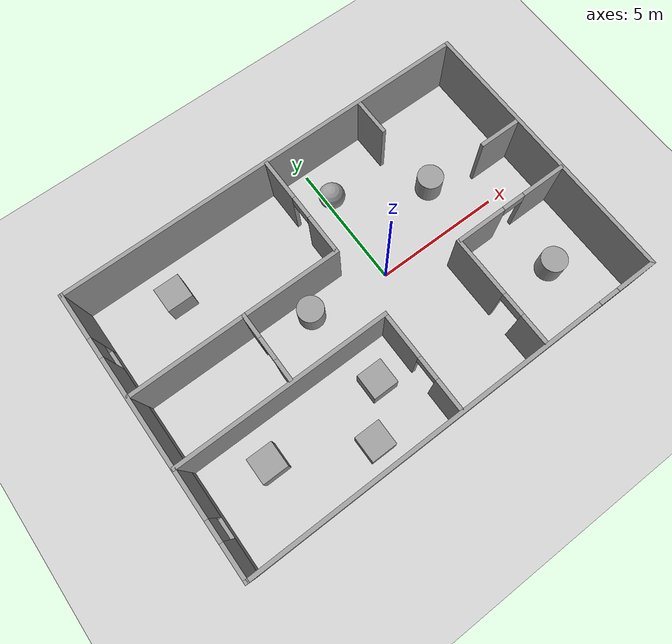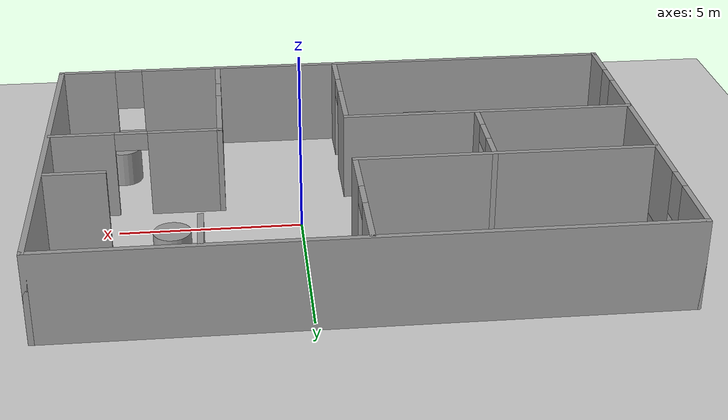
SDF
<sdf version="1.6">
 <world name="default">
  <light name="sun" type="directional">
   <pose>0 0 10 0 -0 0</pose>
   <diffuse>0.8 0.8 0.8 1</diffuse>
   <specular>0.2 0.2 0.2 1</specular>
   <attenuation>
    <range>1000</range>
    <constant>0.9</constant>
    <linear>0.01</linear>
    <quadratic>0.001</quadratic>
   </attenuation>
   <direction>-0.5 0.1 -0.9</direction>
  </light>
  <model name="ground_plane">
   <static>1</static>
   <link name="link">
    <collision name="collision">
     <geometry><plane><normal>0 0 1</normal><size>100 100</size></plane></geometry>
     <surface><friction><ode><mu>100</mu><mu2>50</mu2></ode></friction></surface>
    </collision>
    <visual name="visual">
     <cast_shadows>0</cast_shadows>
     <geometry><plane><normal>0 0 1</normal><size>100 100</size></plane></geometry>
     <material>
      <script><uri>file://media/materials/scripts/gazebo.material</uri><name>Gazebo/Grey</name></script>
     </material>
    </visual>
   </link>
  </model>
  <gravity>0 0 -9.8</gravity>
  <magnetic_field>6e-06 2.3e-05 -4.2e-05</magnetic_field>
  <atmosphere type="adiabatic"/>
  <physics name="default_physics" default="0" type="ode">
   <max_step_size>0.001</max_step_size>
   <real_time_factor>1</real_time_factor>
   <real_time_update_rate>1000</real_time_update_rate>
  </physics>
  <scene><ambient>0.4 0.4 0.4 1</ambient><background>0.7 0.7 0.7 1</background><shadows>1</shadows></scene>
  <spherical_coordinates>
   <surface_model>EARTH_WGS84</surface_model>
   <latitude_deg>0</latitude_deg>
   <longitude_deg>0</longitude_deg>
   <elevation>0</elevation>
   <heading_deg>0</heading_deg>
  </spherical_coordinates>
  <audio><device>default</device></audio>
  <model name="simple_room">
   <pose>-1.34942 -0.18706 0 0 -0 0</pose>
   <link name="Wall_0">
    <collision name="Wall_0_Collision">
     <geometry><box><size>16.5 0.15 2.5</size></box></geometry>
     <pose>0 0 1.25 0 -0 0</pose>
    </collision>
    <visual name="Wall_0_Visual">
     <pose>0 0 1.25 0 -0 0</pose>
     <geometry><box><size>16.5 0.15 2.5</size></box></geometry>
     <material>
      <script><uri>file://media/materials/scripts/gazebo.material</uri><name>Gazebo/Grey</name></script>
      <ambient>1 1 1 1</ambient>
     </material>
     <meta><layer>0</layer></meta>
    </visual>
    <pose>-0 5.425 0 0 -0 0</pose>
   </link>
   <link name="Wall_10">
    <collision name="Wall_10_Collision">
     <geometry><box><size>8.25 0.15 2.5</size></box></geometry>
     <pose>0 0 1.25 0 -0 0</pose>
    </collision>
    <visual name="Wall_10_Visual">
     <pose>0 0 1.25 0 -0 0</pose>
     <geometry><box><size>8.25 0.15 2.5</size></box></geometry>
     <material>
      <script><uri>file://media/materials/scripts/gazebo.material</uri><name>Gazebo/Grey</name></script>
      <ambient>1 1 1 1</ambient>
     </material>
     <meta><layer>0</layer></meta>
    </visual>
    <pose>-4.09626 -1.47004 0 0 -0 0</pose>
   </link>
   <link name="Wall_11">
    <pose>-0.046255 -3.39504 0 0 -0 -1.5708</pose>
    <visual name="Wall_11_Visual_0">
     <pose>-1.07029 0 1.25 0 -0 0</pose>
     <geometry><box><size>1.85942 0.15 2.5</size></box></geometry>
     <material>
      <script><uri>file://media/materials/scripts/gazebo.material</uri><name>Gazebo/Grey</name></script>
      <ambient>1 1 1 1</ambient>
     </material>
     <meta><layer>0</layer></meta>
    </visual>
    <collision name="Wall_11_Collision_0">
     <geometry><box><size>1.85942 0.15 2.5</size></box></geometry>
     <pose>-1.07029 0 1.25 0 -0 0</pose>
    </collision>
    <visual name="Wall_11_Visual_1">
     <pose>1.37971 0 1.25 0 -0 0</pose>
     <geometry><box><size>1.24058 0.15 2.5</size></box></geometry>
     <material>
      <script><uri>file://media/materials/scripts/gazebo.material</uri><name>Gazebo/Grey</name></script>
      <ambient>1 1 1 1</ambient>
     </material>
     <meta><layer>0</layer></meta>
    </visual>
    <collision name="Wall_11_Collision_1">
     <geometry><box><size>1.24058 0.15 2.5</size></box></geometry>
     <pose>1.37971 0 1.25 0 -0 0</pose>
    </collision>
    <visual name="Wall_11_Visual_2">
     <pose>0.309417 0 2.25 0 -0 0</pose>
     <geometry><box><size>0.9 0.15 0.5</size></box></geometry>
     <material>
      <script><uri>file://media/materials/scripts/gazebo.material</uri><name>Gazebo/Grey</name></script>
      <ambient>1 1 1 1</ambient>
     </material>
     <meta><layer>0</layer></meta>
    </visual>
    <collision name="Wall_11_Collision_2">
     <geometry><box><size>0.9 0.15 0.5</size></box></geometry>
     <pose>0.309417 0 2.25 0 -0 0</pose>
    </collision>
   </link>
   <link name="Wall_13">
    <pose>3.50463 -3.12547 0 0 -0 1.5708</pose>
    <visual name="Wall_13_Visual_0">
     <pose>-1.65279 0 1.25 0 -0 0</pose>
     <geometry><box><size>1.19441 0.15 2.5</size></box></geometry>
     <material>
      <script><uri>file://media/materials/scripts/gazebo.material</uri><name>Gazebo/Grey</name></script>
      <ambient>1 1 1 1</ambient>
     </material>
     <meta><layer>0</layer></meta>
    </visual>
    <collision name="Wall_13_Collision_0">
     <geometry><box><size>1.19441 0.15 2.5</size></box></geometry>
     <pose>-1.65279 0 1.25 0 -0 0</pose>
    </collision>
    <visual name="Wall_13_Visual_1">
     <pose>1.04721 0 1.25 0 -0 0</pose>
     <geometry><box><size>2.40559 0.15 2.5</size></box></geometry>
     <material>
      <script><uri>file://media/materials/scripts/gazebo.material</uri><name>Gazebo/Grey</name></script>
      <ambient>1 1 1 1</ambient>
     </material>
     <meta><layer>0</layer></meta>
    </visual>
    <collision name="Wall_13_Collision_1">
     <geometry><box><size>2.40559 0.15 2.5</size></box></geometry>
     <pose>1.04721 0 1.25 0 -0 0</pose>
    </collision>
    <visual name="Wall_13_Visual_2">
     <pose>-0.605588 0 2.25 0 -0 0</pose>
     <geometry><box><size>0.9 0.15 0.5</size></box></geometry>
     <material>
      <script><uri>file://media/materials/scripts/gazebo.material</uri><name>Gazebo/Grey</name></script>
      <ambient>1 1 1 1</ambient>
     </material>
     <meta><layer>0</layer></meta>
    </visual>
    <collision name="Wall_13_Collision_2">
     <geometry><box><size>0.9 0.15 0.5</size></box></geometry>
     <pose>-0.605588 0 2.25 0 -0 0</pose>
    </collision>
   </link>
   <link name="Wall_14">
    <pose>5.80463 -0.950467 0 0 -0 0</pose>
    <visual name="Wall_14_Visual_0">
     <pose>-1.35219 0 1.25 0 -0 0</pose>
     <geometry><box><size>2.04562 0.15 2.5</size></box></geometry>
     <material>
      <script><uri>file://media/materials/scripts/gazebo.material</uri><name>Gazebo/Grey</name></script>
      <ambient>1 1 1 1</ambient>
     </material>
     <meta><layer>0</layer></meta>
    </visual>
    <collision name="Wall_14_Collision_0">
     <geometry><box><size>2.04562 0.15 2.5</size></box></geometry>
     <pose>-1.35219 0 1.25 0 -0 0</pose>
    </collision>
    <visual name="Wall_14_Visual_1">
     <pose>1.47281 0 1.25 0 -0 0</pose>
     <geometry><box><size>1.80438 0.15 2.5</size></box></geometry>
     <material>
      <script><uri>file://media/materials/scripts/gazebo.material</uri><name>Gazebo/Grey</name></script>
      <ambient>1 1 1 1</ambient>
     </material>
     <meta><layer>0</layer></meta>
    </visual>
    <collision name="Wall_14_Collision_1">
     <geometry><box><size>1.80438 0.15 2.5</size></box></geometry>
     <pose>1.47281 0 1.25 0 -0 0</pose>
    </collision>
    <visual name="Wall_14_Visual_2">
     <pose>0.120618 0 2.25 0 -0 0</pose>
     <geometry><box><size>0.9 0.15 0.5</size></box></geometry>
     <material>
      <script><uri>file://media/materials/scripts/gazebo.material</uri><name>Gazebo/Grey</name></script>
      <ambient>1 1 1 1</ambient>
     </material>
     <meta><layer>0</layer></meta>
    </visual>
    <collision name="Wall_14_Collision_2">
     <geometry><box><size>0.9 0.15 0.5</size></box></geometry>
     <pose>0.120618 0 2.25 0 -0 0</pose>
    </collision>
   </link>
   <link name="Wall_16">
    <collision name="Wall_16_Collision">
     <geometry><box><size>1.5 0.15 2.5</size></box></geometry>
     <pose>0 0 1.25 0 -0 0</pose>
    </collision>
    <visual name="Wall_16_Visual">
     <pose>0 0 1.25 0 -0 0</pose>
     <geometry><box><size>1.5 0.15 2.5</size></box></geometry>
     <material>
      <script><uri>file://media/materials/scripts/gazebo.material</uri><name>Gazebo/Grey</name></script>
      <ambient>1 1 1 1</ambient>
     </material>
     <meta><layer>0</layer></meta>
    </visual>
    <pose>4.03664 4.63801 0 0 -0 -1.5708</pose>
   </link>
   <link name="Wall_18">
    <collision name="Wall_18_Collision">
     <geometry><box><size>1.75 0.15 2.5</size></box></geometry>
     <pose>0 0 1.25 0 -0 0</pose>
    </collision>
    <visual name="Wall_18_Visual">
     <pose>0 0 1.25 0 -0 0</pose>
     <geometry><box><size>1.75 0.15 2.5</size></box></geometry>
     <material>
      <script><uri>file://media/materials/scripts/gazebo.material</uri><name>Gazebo/Grey</name></script>
      <ambient>1 1 1 1</ambient>
     </material>
     <meta><layer>0</layer></meta>
    </visual>
    <pose>7.33307 1.37618 0 0 -0 3.14159</pose>
   </link>
   <link name="Wall_2">
    <pose>-8.175 0 0 0 -0 -1.5708</pose>
    <visual name="Wall_2_Visual_0">
     <pose>-4.5558 0 1.25 0 -0 0</pose>
     <geometry><box><size>1.8884 0.15 2.5</size></box></geometry>
     <material>
      <script><uri>file://media/materials/scripts/gazebo.material</uri><name>Gazebo/Grey</name></script>
      <ambient>1 1 1 1</ambient>
     </material>
     <meta><layer>0</layer></meta>
    </visual>
    <collision name="Wall_2_Collision_0">
     <geometry><box><size>1.8884 0.15 2.5</size></box></geometry>
     <pose>-4.5558 0 1.25 0 -0 0</pose>
    </collision>
    <visual name="Wall_2_Visual_1">
     <pose>0.944202 0 0.25 0 -0 0</pose>
     <geometry><box><size>9.1116 0.15 0.5</size></box></geometry>
     <material>
      <script><uri>file://media/materials/scripts/gazebo.material</uri><name>Gazebo/Grey</name></script>
      <ambient>1 1 1 1</ambient>
     </material>
     <meta><layer>0</layer></meta>
    </visual>
    <collision name="Wall_2_Collision_1">
     <geometry><box><size>9.1116 0.15 0.5</size></box></geometry>
     <pose>0.944202 0 0.25 0 -0 0</pose>
    </collision>
    <visual name="Wall_2_Visual_2">
     <pose>0.24643 0 1.5 0 -0 0</pose>
     <geometry><box><size>6.11605 0.15 2</size></box></geometry>
     <material>
      <script><uri>file://media/materials/scripts/gazebo.material</uri><name>Gazebo/Grey</name></script>
      <ambient>1 1 1 1</ambient>
     </material>
     <meta><layer>0</layer></meta>
    </visual>
    <collision name="Wall_2_Collision_2">
     <geometry><box><size>6.11605 0.15 2</size></box></geometry>
     <pose>0.24643 0 1.5 0 -0 0</pose>
    </collision>
    <visual name="Wall_2_Visual_3">
     <pose>4.80223 0 1.5 0 -0 0</pose>
     <geometry><box><size>1.39555 0.15 2</size></box></geometry>
     <material>
      <script><uri>file://media/materials/scripts/gazebo.material</uri><name>Gazebo/Grey</name></script>
      <ambient>1 1 1 1</ambient>
     </material>
     <meta><layer>0</layer></meta>
    </visual>
    <collision name="Wall_2_Collision_3">
     <geometry><box><size>1.39555 0.15 2</size></box></geometry>
     <pose>4.80223 0 1.5 0 -0 0</pose>
    </collision>
    <visual name="Wall_2_Visual_4">
     <pose>-3.2116 0 1.9 0 -0 0</pose>
     <geometry><box><size>0.8 0.15 1.2</size></box></geometry>
     <material>
      <script><uri>file://media/materials/scripts/gazebo.material</uri><name>Gazebo/Grey</name></script>
      <ambient>1 1 1 1</ambient>
     </material>
     <meta><layer>0</layer></meta>
    </visual>
    <collision name="Wall_2_Collision_4">
     <geometry><box><size>0.8 0.15 1.2</size></box></geometry>
     <pose>-3.2116 0 1.9 0 -0 0</pose>
    </collision>
    <visual name="Wall_2_Visual_5">
     <pose>3.70445 0 1.9 0 -0 0</pose>
     <geometry><box><size>0.8 0.15 1.2</size></box></geometry>
     <material>
      <script><uri>file://media/materials/scripts/gazebo.material</uri><name>Gazebo/Grey</name></script>
      <ambient>1 1 1 1</ambient>
     </material>
     <meta><layer>0</layer></meta>
    </visual>
    <collision name="Wall_2_Collision_5">
     <geometry><box><size>0.8 0.15 1.2</size></box></geometry>
     <pose>3.70445 0 1.9 0 -0 0</pose>
    </collision>
   </link>
   <link name="Wall_20">
    <pose>-3.75722 -0.056818 0 0 -0 -1.5708</pose>
    <visual name="Wall_20_Visual_0">
     <pose>-0.884195 0 1.25 0 -0 0</pose>
     <geometry><box><size>0.98161 0.15 2.5</size></box></geometry>
     <material>
      <script><uri>file://media/materials/scripts/gazebo.material</uri><name>Gazebo/Grey</name></script>
      <ambient>1 1 1 1</ambient>
     </material>
     <meta><layer>0</layer></meta>
    </visual>
    <collision name="Wall_20_Collision_0">
     <geometry><box><size>0.98161 0.15 2.5</size></box></geometry>
     <pose>-0.884195 0 1.25 0 -0 0</pose>
    </collision>
    <visual name="Wall_20_Visual_1">
     <pose>0.940805 0 1.25 0 -0 0</pose>
     <geometry><box><size>0.86839 0.15 2.5</size></box></geometry>
     <material>
      <script><uri>file://media/materials/scripts/gazebo.material</uri><name>Gazebo/Grey</name></script>
      <ambient>1 1 1 1</ambient>
     </material>
     <meta><layer>0</layer></meta>
    </visual>
    <collision name="Wall_20_Collision_1">
     <geometry><box><size>0.86839 0.15 2.5</size></box></geometry>
     <pose>0.940805 0 1.25 0 -0 0</pose>
    </collision>
    <visual name="Wall_20_Visual_2">
     <pose>0.05661 0 2.25 0 -0 0</pose>
     <geometry><box><size>0.9 0.15 0.5</size></box></geometry>
     <material>
      <script><uri>file://media/materials/scripts/gazebo.material</uri><name>Gazebo/Grey</name></script>
      <ambient>1 1 1 1</ambient>
     </material>
     <meta><layer>0</layer></meta>
    </visual>
    <collision name="Wall_20_Collision_2">
     <geometry><box><size>0.9 0.15 0.5</size></box></geometry>
     <pose>0.05661 0 2.25 0 -0 0</pose>
    </collision>
   </link>
   <link name="Wall_3">
    <pose>-0 -5.425 0 0 -0 0</pose>
    <visual name="Wall_3_Visual_0">
     <pose>-1.22937 0 1.25 0 -0 0</pose>
     <geometry><box><size>14.0413 0.15 2.5</size></box></geometry>
     <material>
      <script><uri>file://media/materials/scripts/gazebo.material</uri><name>Gazebo/Grey</name></script>
      <ambient>1 1 1 1</ambient>
     </material>
     <meta><layer>0</layer></meta>
    </visual>
    <collision name="Wall_3_Collision_0">
     <geometry><box><size>14.0413 0.15 2.5</size></box></geometry>
     <pose>-1.22937 0 1.25 0 -0 0</pose>
    </collision>
    <visual name="Wall_3_Visual_1">
     <pose>7.02063 0 0.25 0 -0 0</pose>
     <geometry><box><size>2.45875 0.15 0.5</size></box></geometry>
     <material>
      <script><uri>file://media/materials/scripts/gazebo.material</uri><name>Gazebo/Grey</name></script>
      <ambient>1 1 1 1</ambient>
     </material>
     <meta><layer>0</layer></meta>
    </visual>
    <collision name="Wall_3_Collision_1">
     <geometry><box><size>2.45875 0.15 0.5</size></box></geometry>
     <pose>7.02063 0 0.25 0 -0 0</pose>
    </collision>
    <visual name="Wall_3_Visual_2">
     <pose>7.42063 0 1.5 0 -0 0</pose>
     <geometry><box><size>1.65875 0.15 2</size></box></geometry>
     <material>
      <script><uri>file://media/materials/scripts/gazebo.material</uri><name>Gazebo/Grey</name></script>
      <ambient>1 1 1 1</ambient>
     </material>
     <meta><layer>0</layer></meta>
    </visual>
    <collision name="Wall_3_Collision_2">
     <geometry><box><size>1.65875 0.15 2</size></box></geometry>
     <pose>7.42063 0 1.5 0 -0 0</pose>
    </collision>
    <visual name="Wall_3_Visual_3">
     <pose>6.19125 0 1.9 0 -0 0</pose>
     <geometry><box><size>0.8 0.15 1.2</size></box></geometry>
     <material>
      <script><uri>file://media/materials/scripts/gazebo.material</uri><name>Gazebo/Grey</name></script>
      <ambient>1 1 1 1</ambient>
     </material>
     <meta><layer>0</layer></meta>
    </visual>
    <collision name="Wall_3_Collision_3">
     <geometry><box><size>0.8 0.15 1.2</size></box></geometry>
     <pose>6.19125 0 1.9 0 -0 0</pose>
    </collision>
   </link>
   <link name="Wall_4">
    <collision name="Wall_4_Collision">
     <geometry><box><size>11 0.15 2.5</size></box></geometry>
     <pose>0 0 1.25 0 -0 0</pose>
    </collision>
    <visual name="Wall_4_Visual">
     <pose>0 0 1.25 0 -0 0</pose>
     <geometry><box><size>11 0.15 2.5</size></box></geometry>
     <material>
      <script><uri>file://media/materials/scripts/gazebo.material</uri><name>Gazebo/Grey</name></script>
      <ambient>1 1 1 1</ambient>
     </material>
     <meta><layer>0</layer></meta>
    </visual>
    <pose>8.175 0 0 0 -0 1.5708</pose>
   </link>
   <link name="Wall_6">
    <collision name="Wall_6_Collision">
     <geometry><box><size>8.25 0.15 2.5</size></box></geometry>
     <pose>0 0 1.25 0 -0 0</pose>
    </collision>
    <visual name="Wall_6_Visual">
     <pose>0 0 1.25 0 -0 0</pose>
     <geometry><box><size>8.25 0.15 2.5</size></box></geometry>
     <material>
      <script><uri>file://media/materials/scripts/gazebo.material</uri><name>Gazebo/Grey</name></script>
      <ambient>1 1 1 1</ambient>
     </material>
     <meta><layer>0</layer></meta>
    </visual>
    <pose>-4.06965 1.24318 0 0 -0 0</pose>
   </link>
   <link name="Wall_8">
    <pose>-0.019655 3.29318 0 0 -0 1.5708</pose>
    <visual name="Wall_8_Visual_0">
     <pose>-1.30169 0 1.25 0 -0 0</pose>
     <geometry><box><size>1.64661 0.15 2.5</size></box></geometry>
     <material>
      <script><uri>file://media/materials/scripts/gazebo.material</uri><name>Gazebo/Grey</name></script>
      <ambient>1 1 1 1</ambient>
     </material>
     <meta><layer>0</layer></meta>
    </visual>
    <collision name="Wall_8_Collision_0">
     <geometry><box><size>1.64661 0.15 2.5</size></box></geometry>
     <pose>-1.30169 0 1.25 0 -0 0</pose>
    </collision>
    <visual name="Wall_8_Visual_1">
     <pose>1.27331 0 1.25 0 -0 0</pose>
     <geometry><box><size>1.70338 0.15 2.5</size></box></geometry>
     <material>
      <script><uri>file://media/materials/scripts/gazebo.material</uri><name>Gazebo/Grey</name></script>
      <ambient>1 1 1 1</ambient>
     </material>
     <meta><layer>0</layer></meta>
    </visual>
    <collision name="Wall_8_Collision_1">
     <geometry><box><size>1.70338 0.15 2.5</size></box></geometry>
     <pose>1.27331 0 1.25 0 -0 0</pose>
    </collision>
    <visual name="Wall_8_Visual_2">
     <pose>-0.028385 0 2.25 0 -0 0</pose>
     <geometry><box><size>0.9 0.15 0.5</size></box></geometry>
     <material>
      <script><uri>file://media/materials/scripts/gazebo.material</uri><name>Gazebo/Grey</name></script>
      <ambient>1 1 1 1</ambient>
     </material>
     <meta><layer>0</layer></meta>
    </visual>
    <collision name="Wall_8_Collision_2">
     <geometry><box><size>0.9 0.15 0.5</size></box></geometry>
     <pose>-0.028385 0 2.25 0 -0 0</pose>
    </collision>
   </link>
   <static>1</static>
  </model>
  <model name="unit_box">
   <pose>-6.59345 3.74283 0.499995 0 1e-05 0</pose>
   <link name="link">
    <inertial>
     <mass>1</mass>
     <inertia>
      <ixx>0.166667</ixx>
      <ixy>0</ixy>
      <ixz>0</ixz>
      <iyy>0.166667</iyy>
      <iyz>0</iyz>
      <izz>0.166667</izz>
     </inertia>
    </inertial>
    <collision name="collision"><geometry><box><size>1 1 1</size></box></geometry></collision>
    <visual name="visual">
     <geometry><box><size>1 1 1</size></box></geometry>
     <material>
      <script><name>Gazebo/Grey</name><uri>file://media/materials/scripts/gazebo.material</uri></script>
     </material>
    </visual>
   </link>
  </model>
  <model name="unit_cylinder">
   <pose>3.48907 1.83018 0.499998 3e-06 -4e-06 0</pose>
   <link name="link">
    <inertial>
     <mass>1</mass>
     <inertia><ixx>0.145833</ixx><ixy>0</ixy><ixz>0</ixz><iyy>0.145833</iyy><iyz>0</iyz><izz>0.125</izz></inertia>
    </inertial>
    <collision name="collision">
     <geometry><cylinder><radius>0.5</radius><length>1</length></cylinder></geometry>
    </collision>
    <visual name="visual">
     <geometry><cylinder><radius>0.5</radius><length>1</length></cylinder></geometry>
     <material>
      <script><name>Gazebo/Grey</name><uri>file://media/materials/scripts/gazebo.material</uri></script>
     </material>
    </visual>
   </link>
  </model>
  <model name="unit_sphere">
   <pose>0.223022 3.61332 0.5 0 -0 0</pose>
   <link name="link">
    <inertial>
     <mass>1</mass>
     <inertia><ixx>0.1</ixx><ixy>0</ixy><ixz>0</ixz><iyy>0.1</iyy><iyz>0</iyz><izz>0.1</izz></inertia>
    </inertial>
    <collision name="collision"><geometry><sphere><radius>0.5</radius></sphere></geometry></collision>
    <visual name="visual">
     <geometry><sphere><radius>0.5</radius></sphere></geometry>
     <material>
      <script><name>Gazebo/Grey</name><uri>file://media/materials/scripts/gazebo.material</uri></script>
     </material>
    </visual>
   </link>
  </model>
  <model name="unit_box_0">
   <pose>-2.69304 -3.0038 0.499995 -1e-05 -0 -0</pose>
   <link name="link">
    <inertial>
     <mass>1</mass>
     <inertia>
      <ixx>0.166667</ixx>
      <ixy>0</ixy>
      <ixz>0</ixz>
      <iyy>0.166667</iyy>
      <iyz>0</iyz>
      <izz>0.166667</izz>
     </inertia>
    </inertial>
    <collision name="collision"><geometry><box><size>1 1 1</size></box></geometry></collision>
    <visual name="visual">
     <geometry><box><size>1 1 1</size></box></geometry>
     <material>
      <script><name>Gazebo/Grey</name><uri>file://media/materials/scripts/gazebo.material</uri></script>
     </material>
    </visual>
   </link>
  </model>
  <model name="unit_box_1">
   <pose>-3.99036 -4.60039 0.499995 0 1e-05 0</pose>
   <link name="link">
    <inertial>
     <mass>1</mass>
     <inertia>
      <ixx>0.166667</ixx>
      <ixy>0</ixy>
      <ixz>0</ixz>
      <iyy>0.166667</iyy>
      <iyz>0</iyz>
      <izz>0.166667</izz>
     </inertia>
    </inertial>
    <collision name="collision"><geometry><box><size>1 1 1</size></box></geometry></collision>
    <visual name="visual">
     <geometry><box><size>1 1 1</size></box></geometry>
     <material>
      <script><name>Gazebo/Grey</name><uri>file://media/materials/scripts/gazebo.material</uri></script>
     </material>
    </visual>
   </link>
  </model>
  <model name="unit_cylinder_0">
   <pose>4.98598 -3.39048 0.499997 3e-06 4e-06 -0</pose>
   <link name="link">
    <inertial>
     <mass>1</mass>
     <inertia><ixx>0.145833</ixx><ixy>0</ixy><ixz>0</ixz><iyy>0.145833</iyy><iyz>0</iyz><izz>0.125</izz></inertia>
    </inertial>
    <collision name="collision">
     <geometry><cylinder><radius>0.5</radius><length>1</length></cylinder></geometry>
    </collision>
    <visual name="visual">
     <geometry><cylinder><radius>0.5</radius><length>1</length></cylinder></geometry>
     <material>
      <script><name>Gazebo/Grey</name><uri>file://media/materials/scripts/gazebo.material</uri></script>
     </material>
    </visual>
   </link>
  </model>
  <model name="unit_box_2">
   <pose>-7.24204 -3.03288 0.499995 -1e-05 -0 0</pose>
   <link name="link">
    <inertial>
     <mass>1</mass>
     <inertia>
      <ixx>0.166667</ixx>
      <ixy>0</ixy>
      <ixz>0</ixz>
      <iyy>0.166667</iyy>
      <iyz>0</iyz>
      <izz>0.166667</izz>
     </inertia>
    </inertial>
    <collision name="collision"><geometry><box><size>1 1 1</size></box></geometry></collision>
    <visual name="visual">
     <geometry><box><size>1 1 1</size></box></geometry>
     <material>
      <script><name>Gazebo/Grey</name><uri>file://media/materials/scripts/gazebo.material</uri></script>
     </material>
    </visual>
   </link>
  </model>
  <model name="unit_cylinder_1">
   <pose>-3.0773 0.35732 0.499997 3e-06 4e-06 -0</pose>
   <link name="link">
    <inertial>
     <mass>1</mass>
     <inertia><ixx>0.145833</ixx><ixy>0</ixy><ixz>0</ixz><iyy>0.145833</iyy><iyz>0</iyz><izz>0.125</izz></inertia>
    </inertial>
    <collision name="collision">
     <geometry><cylinder><radius>0.5</radius><length>1</length></cylinder></geometry>
    </collision>
    <visual name="visual">
     <geometry><cylinder><radius>0.5</radius><length>1</length></cylinder></geometry>
     <material>
      <script><name>Gazebo/Grey</name><uri>file://media/materials/scripts/gazebo.material</uri></script>
     </material>
    </visual>
   </link>
  </model>
 </world>
</sdf>
